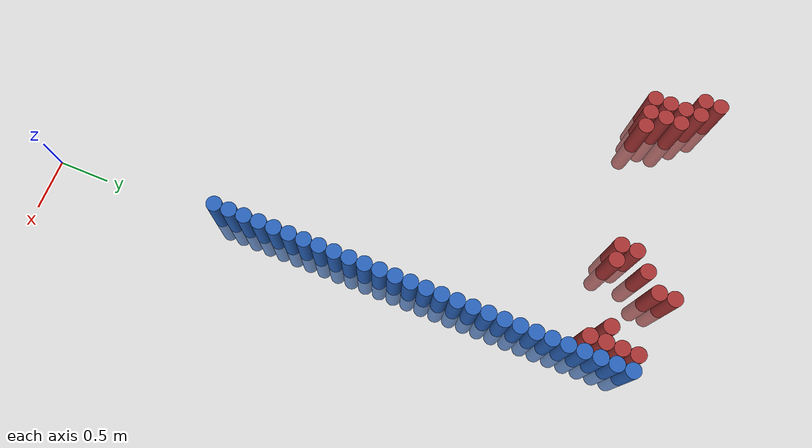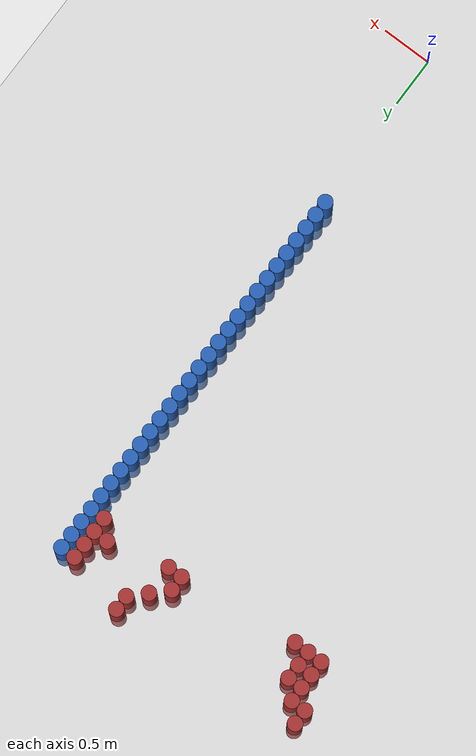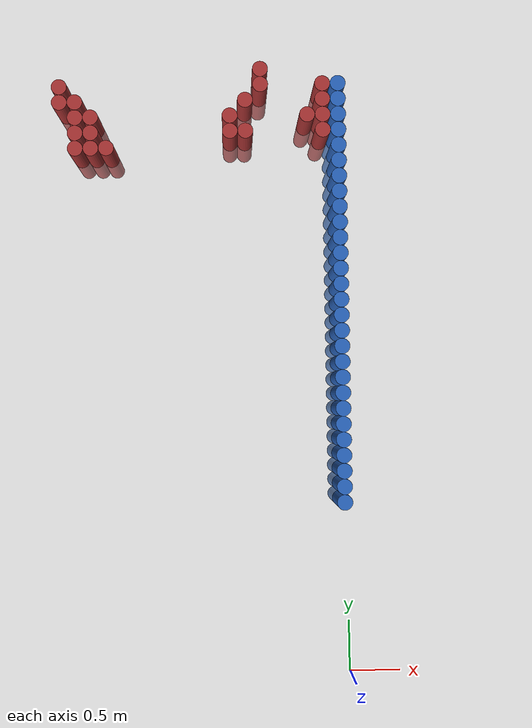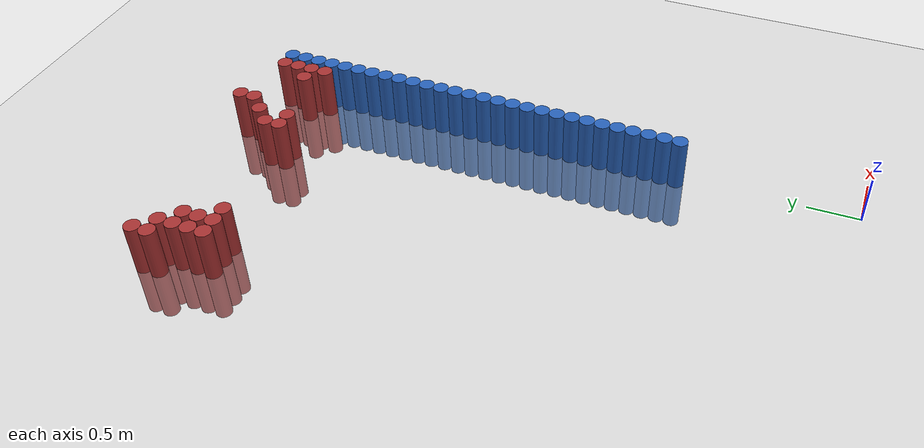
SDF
<sdf version="1.6">
 <world name="default">
  <model name="ground_plane">
   <static>1</static>
   <link name="link">
    <collision name="collision">
     <geometry><plane><normal>0 0 1</normal><size>100 100</size></plane></geometry>
     <surface><friction><ode><mu>100</mu><mu2>50</mu2></ode></friction></surface>
    </collision>
    <visual name="visual">
     <cast_shadows>0</cast_shadows>
     <geometry><plane><normal>0 0 1</normal><size>100 100</size></plane></geometry>
     <material>
      <script><uri>file://media/materials/scripts/gazebo.material</uri><name>Gazebo/Grey</name></script>
     </material>
    </visual>
   </link>
  </model>
  <model name="unit_cylinder_50">
   <static>1</static>
   <pose>-0.075000 1.725000 0.000000 0.000000 0.000000 0.000000</pose>
   <link name="link">
    <inertial>
     <mass>1</mass>
     <inertia><ixx>0.145833</ixx><ixy>0</ixy><ixz>0</ixz><iyy>0.145833</iyy><iyz>0</iyz><izz>0.125</izz></inertia>
    </inertial>
    <collision name="collision">
     <geometry><cylinder><radius>0.075000</radius><length>1</length></cylinder></geometry>
    </collision>
    <visual name="visual">
     <geometry><cylinder><radius>0.075000</radius><length>1</length></cylinder></geometry>
     <material>
      <ambient>0.152000 0.379000 0.720000 1</ambient>
      <diffuse>0.152000 0.379000 0.720000 1</diffuse>
     </material>
     <material>
      <script><name>Gazebo/Grey</name><uri>file://media/materials/scripts/gazebo.material</uri></script>
     </material>
    </visual>
   </link>
  </model>
  <model name="unit_cylinder_52">
   <static>1</static>
   <pose>-0.075000 1.875000 0.000000 0.000000 0.000000 0.000000</pose>
   <link name="link">
    <inertial>
     <mass>1</mass>
     <inertia><ixx>0.145833</ixx><ixy>0</ixy><ixz>0</ixz><iyy>0.145833</iyy><iyz>0</iyz><izz>0.125</izz></inertia>
    </inertial>
    <collision name="collision">
     <geometry><cylinder><radius>0.075000</radius><length>1</length></cylinder></geometry>
    </collision>
    <visual name="visual">
     <geometry><cylinder><radius>0.075000</radius><length>1</length></cylinder></geometry>
     <material>
      <ambient>0.152000 0.379000 0.720000 1</ambient>
      <diffuse>0.152000 0.379000 0.720000 1</diffuse>
     </material>
     <material>
      <script><name>Gazebo/Grey</name><uri>file://media/materials/scripts/gazebo.material</uri></script>
     </material>
    </visual>
   </link>
  </model>
  <model name="unit_cylinder_54">
   <static>1</static>
   <pose>-0.075000 2.025000 0.000000 0.000000 0.000000 0.000000</pose>
   <link name="link">
    <inertial>
     <mass>1</mass>
     <inertia><ixx>0.145833</ixx><ixy>0</ixy><ixz>0</ixz><iyy>0.145833</iyy><iyz>0</iyz><izz>0.125</izz></inertia>
    </inertial>
    <collision name="collision">
     <geometry><cylinder><radius>0.075000</radius><length>1</length></cylinder></geometry>
    </collision>
    <visual name="visual">
     <geometry><cylinder><radius>0.075000</radius><length>1</length></cylinder></geometry>
     <material>
      <ambient>0.152000 0.379000 0.720000 1</ambient>
      <diffuse>0.152000 0.379000 0.720000 1</diffuse>
     </material>
     <material>
      <script><name>Gazebo/Grey</name><uri>file://media/materials/scripts/gazebo.material</uri></script>
     </material>
    </visual>
   </link>
  </model>
  <model name="unit_cylinder_56">
   <static>1</static>
   <pose>-0.075000 2.175000 0.000000 0.000000 0.000000 0.000000</pose>
   <link name="link">
    <inertial>
     <mass>1</mass>
     <inertia><ixx>0.145833</ixx><ixy>0</ixy><ixz>0</ixz><iyy>0.145833</iyy><iyz>0</iyz><izz>0.125</izz></inertia>
    </inertial>
    <collision name="collision">
     <geometry><cylinder><radius>0.075000</radius><length>1</length></cylinder></geometry>
    </collision>
    <visual name="visual">
     <geometry><cylinder><radius>0.075000</radius><length>1</length></cylinder></geometry>
     <material>
      <ambient>0.152000 0.379000 0.720000 1</ambient>
      <diffuse>0.152000 0.379000 0.720000 1</diffuse>
     </material>
     <material>
      <script><name>Gazebo/Grey</name><uri>file://media/materials/scripts/gazebo.material</uri></script>
     </material>
    </visual>
   </link>
  </model>
  <model name="unit_cylinder_58">
   <static>1</static>
   <pose>-0.075000 2.325000 0.000000 0.000000 0.000000 0.000000</pose>
   <link name="link">
    <inertial>
     <mass>1</mass>
     <inertia><ixx>0.145833</ixx><ixy>0</ixy><ixz>0</ixz><iyy>0.145833</iyy><iyz>0</iyz><izz>0.125</izz></inertia>
    </inertial>
    <collision name="collision">
     <geometry><cylinder><radius>0.075000</radius><length>1</length></cylinder></geometry>
    </collision>
    <visual name="visual">
     <geometry><cylinder><radius>0.075000</radius><length>1</length></cylinder></geometry>
     <material>
      <ambient>0.152000 0.379000 0.720000 1</ambient>
      <diffuse>0.152000 0.379000 0.720000 1</diffuse>
     </material>
     <material>
      <script><name>Gazebo/Grey</name><uri>file://media/materials/scripts/gazebo.material</uri></script>
     </material>
    </visual>
   </link>
  </model>
  <model name="unit_cylinder_60">
   <static>1</static>
   <pose>-0.075000 2.475000 0.000000 0.000000 0.000000 0.000000</pose>
   <link name="link">
    <inertial>
     <mass>1</mass>
     <inertia><ixx>0.145833</ixx><ixy>0</ixy><ixz>0</ixz><iyy>0.145833</iyy><iyz>0</iyz><izz>0.125</izz></inertia>
    </inertial>
    <collision name="collision">
     <geometry><cylinder><radius>0.075000</radius><length>1</length></cylinder></geometry>
    </collision>
    <visual name="visual">
     <geometry><cylinder><radius>0.075000</radius><length>1</length></cylinder></geometry>
     <material>
      <ambient>0.152000 0.379000 0.720000 1</ambient>
      <diffuse>0.152000 0.379000 0.720000 1</diffuse>
     </material>
     <material>
      <script><name>Gazebo/Grey</name><uri>file://media/materials/scripts/gazebo.material</uri></script>
     </material>
    </visual>
   </link>
  </model>
  <model name="unit_cylinder_62">
   <static>1</static>
   <pose>-0.075000 2.625000 0.000000 0.000000 0.000000 0.000000</pose>
   <link name="link">
    <inertial>
     <mass>1</mass>
     <inertia><ixx>0.145833</ixx><ixy>0</ixy><ixz>0</ixz><iyy>0.145833</iyy><iyz>0</iyz><izz>0.125</izz></inertia>
    </inertial>
    <collision name="collision">
     <geometry><cylinder><radius>0.075000</radius><length>1</length></cylinder></geometry>
    </collision>
    <visual name="visual">
     <geometry><cylinder><radius>0.075000</radius><length>1</length></cylinder></geometry>
     <material>
      <ambient>0.152000 0.379000 0.720000 1</ambient>
      <diffuse>0.152000 0.379000 0.720000 1</diffuse>
     </material>
     <material>
      <script><name>Gazebo/Grey</name><uri>file://media/materials/scripts/gazebo.material</uri></script>
     </material>
    </visual>
   </link>
  </model>
  <model name="unit_cylinder_64">
   <static>1</static>
   <pose>-0.075000 2.775000 0.000000 0.000000 0.000000 0.000000</pose>
   <link name="link">
    <inertial>
     <mass>1</mass>
     <inertia><ixx>0.145833</ixx><ixy>0</ixy><ixz>0</ixz><iyy>0.145833</iyy><iyz>0</iyz><izz>0.125</izz></inertia>
    </inertial>
    <collision name="collision">
     <geometry><cylinder><radius>0.075000</radius><length>1</length></cylinder></geometry>
    </collision>
    <visual name="visual">
     <geometry><cylinder><radius>0.075000</radius><length>1</length></cylinder></geometry>
     <material>
      <ambient>0.152000 0.379000 0.720000 1</ambient>
      <diffuse>0.152000 0.379000 0.720000 1</diffuse>
     </material>
     <material>
      <script><name>Gazebo/Grey</name><uri>file://media/materials/scripts/gazebo.material</uri></script>
     </material>
    </visual>
   </link>
  </model>
  <model name="unit_cylinder_66">
   <static>1</static>
   <pose>-0.075000 2.925000 0.000000 0.000000 0.000000 0.000000</pose>
   <link name="link">
    <inertial>
     <mass>1</mass>
     <inertia><ixx>0.145833</ixx><ixy>0</ixy><ixz>0</ixz><iyy>0.145833</iyy><iyz>0</iyz><izz>0.125</izz></inertia>
    </inertial>
    <collision name="collision">
     <geometry><cylinder><radius>0.075000</radius><length>1</length></cylinder></geometry>
    </collision>
    <visual name="visual">
     <geometry><cylinder><radius>0.075000</radius><length>1</length></cylinder></geometry>
     <material>
      <ambient>0.152000 0.379000 0.720000 1</ambient>
      <diffuse>0.152000 0.379000 0.720000 1</diffuse>
     </material>
     <material>
      <script><name>Gazebo/Grey</name><uri>file://media/materials/scripts/gazebo.material</uri></script>
     </material>
    </visual>
   </link>
  </model>
  <model name="unit_cylinder_68">
   <static>1</static>
   <pose>-0.075000 3.075000 0.000000 0.000000 0.000000 0.000000</pose>
   <link name="link">
    <inertial>
     <mass>1</mass>
     <inertia><ixx>0.145833</ixx><ixy>0</ixy><ixz>0</ixz><iyy>0.145833</iyy><iyz>0</iyz><izz>0.125</izz></inertia>
    </inertial>
    <collision name="collision">
     <geometry><cylinder><radius>0.075000</radius><length>1</length></cylinder></geometry>
    </collision>
    <visual name="visual">
     <geometry><cylinder><radius>0.075000</radius><length>1</length></cylinder></geometry>
     <material>
      <ambient>0.152000 0.379000 0.720000 1</ambient>
      <diffuse>0.152000 0.379000 0.720000 1</diffuse>
     </material>
     <material>
      <script><name>Gazebo/Grey</name><uri>file://media/materials/scripts/gazebo.material</uri></script>
     </material>
    </visual>
   </link>
  </model>
  <model name="unit_cylinder_70">
   <static>1</static>
   <pose>-0.075000 3.225000 0.000000 0.000000 0.000000 0.000000</pose>
   <link name="link">
    <inertial>
     <mass>1</mass>
     <inertia><ixx>0.145833</ixx><ixy>0</ixy><ixz>0</ixz><iyy>0.145833</iyy><iyz>0</iyz><izz>0.125</izz></inertia>
    </inertial>
    <collision name="collision">
     <geometry><cylinder><radius>0.075000</radius><length>1</length></cylinder></geometry>
    </collision>
    <visual name="visual">
     <geometry><cylinder><radius>0.075000</radius><length>1</length></cylinder></geometry>
     <material>
      <ambient>0.152000 0.379000 0.720000 1</ambient>
      <diffuse>0.152000 0.379000 0.720000 1</diffuse>
     </material>
     <material>
      <script><name>Gazebo/Grey</name><uri>file://media/materials/scripts/gazebo.material</uri></script>
     </material>
    </visual>
   </link>
  </model>
  <model name="unit_cylinder_72">
   <static>1</static>
   <pose>-0.075000 3.375000 0.000000 0.000000 0.000000 0.000000</pose>
   <link name="link">
    <inertial>
     <mass>1</mass>
     <inertia><ixx>0.145833</ixx><ixy>0</ixy><ixz>0</ixz><iyy>0.145833</iyy><iyz>0</iyz><izz>0.125</izz></inertia>
    </inertial>
    <collision name="collision">
     <geometry><cylinder><radius>0.075000</radius><length>1</length></cylinder></geometry>
    </collision>
    <visual name="visual">
     <geometry><cylinder><radius>0.075000</radius><length>1</length></cylinder></geometry>
     <material>
      <ambient>0.152000 0.379000 0.720000 1</ambient>
      <diffuse>0.152000 0.379000 0.720000 1</diffuse>
     </material>
     <material>
      <script><name>Gazebo/Grey</name><uri>file://media/materials/scripts/gazebo.material</uri></script>
     </material>
    </visual>
   </link>
  </model>
  <model name="unit_cylinder_74">
   <static>1</static>
   <pose>-0.075000 3.525000 0.000000 0.000000 0.000000 0.000000</pose>
   <link name="link">
    <inertial>
     <mass>1</mass>
     <inertia><ixx>0.145833</ixx><ixy>0</ixy><ixz>0</ixz><iyy>0.145833</iyy><iyz>0</iyz><izz>0.125</izz></inertia>
    </inertial>
    <collision name="collision">
     <geometry><cylinder><radius>0.075000</radius><length>1</length></cylinder></geometry>
    </collision>
    <visual name="visual">
     <geometry><cylinder><radius>0.075000</radius><length>1</length></cylinder></geometry>
     <material>
      <ambient>0.152000 0.379000 0.720000 1</ambient>
      <diffuse>0.152000 0.379000 0.720000 1</diffuse>
     </material>
     <material>
      <script><name>Gazebo/Grey</name><uri>file://media/materials/scripts/gazebo.material</uri></script>
     </material>
    </visual>
   </link>
  </model>
  <model name="unit_cylinder_76">
   <static>1</static>
   <pose>-0.075000 3.675000 0.000000 0.000000 0.000000 0.000000</pose>
   <link name="link">
    <inertial>
     <mass>1</mass>
     <inertia><ixx>0.145833</ixx><ixy>0</ixy><ixz>0</ixz><iyy>0.145833</iyy><iyz>0</iyz><izz>0.125</izz></inertia>
    </inertial>
    <collision name="collision">
     <geometry><cylinder><radius>0.075000</radius><length>1</length></cylinder></geometry>
    </collision>
    <visual name="visual">
     <geometry><cylinder><radius>0.075000</radius><length>1</length></cylinder></geometry>
     <material>
      <ambient>0.152000 0.379000 0.720000 1</ambient>
      <diffuse>0.152000 0.379000 0.720000 1</diffuse>
     </material>
     <material>
      <script><name>Gazebo/Grey</name><uri>file://media/materials/scripts/gazebo.material</uri></script>
     </material>
    </visual>
   </link>
  </model>
  <model name="unit_cylinder_78">
   <static>1</static>
   <pose>-0.075000 3.825000 0.000000 0.000000 0.000000 0.000000</pose>
   <link name="link">
    <inertial>
     <mass>1</mass>
     <inertia><ixx>0.145833</ixx><ixy>0</ixy><ixz>0</ixz><iyy>0.145833</iyy><iyz>0</iyz><izz>0.125</izz></inertia>
    </inertial>
    <collision name="collision">
     <geometry><cylinder><radius>0.075000</radius><length>1</length></cylinder></geometry>
    </collision>
    <visual name="visual">
     <geometry><cylinder><radius>0.075000</radius><length>1</length></cylinder></geometry>
     <material>
      <ambient>0.152000 0.379000 0.720000 1</ambient>
      <diffuse>0.152000 0.379000 0.720000 1</diffuse>
     </material>
     <material>
      <script><name>Gazebo/Grey</name><uri>file://media/materials/scripts/gazebo.material</uri></script>
     </material>
    </visual>
   </link>
  </model>
  <model name="unit_cylinder_80">
   <static>1</static>
   <pose>-0.075000 3.975000 0.000000 0.000000 0.000000 0.000000</pose>
   <link name="link">
    <inertial>
     <mass>1</mass>
     <inertia><ixx>0.145833</ixx><ixy>0</ixy><ixz>0</ixz><iyy>0.145833</iyy><iyz>0</iyz><izz>0.125</izz></inertia>
    </inertial>
    <collision name="collision">
     <geometry><cylinder><radius>0.075000</radius><length>1</length></cylinder></geometry>
    </collision>
    <visual name="visual">
     <geometry><cylinder><radius>0.075000</radius><length>1</length></cylinder></geometry>
     <material>
      <ambient>0.152000 0.379000 0.720000 1</ambient>
      <diffuse>0.152000 0.379000 0.720000 1</diffuse>
     </material>
     <material>
      <script><name>Gazebo/Grey</name><uri>file://media/materials/scripts/gazebo.material</uri></script>
     </material>
    </visual>
   </link>
  </model>
  <model name="unit_cylinder_82">
   <static>1</static>
   <pose>-0.075000 4.125000 0.000000 0.000000 0.000000 0.000000</pose>
   <link name="link">
    <inertial>
     <mass>1</mass>
     <inertia><ixx>0.145833</ixx><ixy>0</ixy><ixz>0</ixz><iyy>0.145833</iyy><iyz>0</iyz><izz>0.125</izz></inertia>
    </inertial>
    <collision name="collision">
     <geometry><cylinder><radius>0.075000</radius><length>1</length></cylinder></geometry>
    </collision>
    <visual name="visual">
     <geometry><cylinder><radius>0.075000</radius><length>1</length></cylinder></geometry>
     <material>
      <ambient>0.152000 0.379000 0.720000 1</ambient>
      <diffuse>0.152000 0.379000 0.720000 1</diffuse>
     </material>
     <material>
      <script><name>Gazebo/Grey</name><uri>file://media/materials/scripts/gazebo.material</uri></script>
     </material>
    </visual>
   </link>
  </model>
  <model name="unit_cylinder_84">
   <static>1</static>
   <pose>-0.075000 4.275000 0.000000 0.000000 0.000000 0.000000</pose>
   <link name="link">
    <inertial>
     <mass>1</mass>
     <inertia><ixx>0.145833</ixx><ixy>0</ixy><ixz>0</ixz><iyy>0.145833</iyy><iyz>0</iyz><izz>0.125</izz></inertia>
    </inertial>
    <collision name="collision">
     <geometry><cylinder><radius>0.075000</radius><length>1</length></cylinder></geometry>
    </collision>
    <visual name="visual">
     <geometry><cylinder><radius>0.075000</radius><length>1</length></cylinder></geometry>
     <material>
      <ambient>0.152000 0.379000 0.720000 1</ambient>
      <diffuse>0.152000 0.379000 0.720000 1</diffuse>
     </material>
     <material>
      <script><name>Gazebo/Grey</name><uri>file://media/materials/scripts/gazebo.material</uri></script>
     </material>
    </visual>
   </link>
  </model>
  <model name="unit_cylinder_86">
   <static>1</static>
   <pose>-0.075000 4.425000 0.000000 0.000000 0.000000 0.000000</pose>
   <link name="link">
    <inertial>
     <mass>1</mass>
     <inertia><ixx>0.145833</ixx><ixy>0</ixy><ixz>0</ixz><iyy>0.145833</iyy><iyz>0</iyz><izz>0.125</izz></inertia>
    </inertial>
    <collision name="collision">
     <geometry><cylinder><radius>0.075000</radius><length>1</length></cylinder></geometry>
    </collision>
    <visual name="visual">
     <geometry><cylinder><radius>0.075000</radius><length>1</length></cylinder></geometry>
     <material>
      <ambient>0.152000 0.379000 0.720000 1</ambient>
      <diffuse>0.152000 0.379000 0.720000 1</diffuse>
     </material>
     <material>
      <script><name>Gazebo/Grey</name><uri>file://media/materials/scripts/gazebo.material</uri></script>
     </material>
    </visual>
   </link>
  </model>
  <model name="unit_cylinder_88">
   <static>1</static>
   <pose>-0.075000 4.575000 0.000000 0.000000 0.000000 0.000000</pose>
   <link name="link">
    <inertial>
     <mass>1</mass>
     <inertia><ixx>0.145833</ixx><ixy>0</ixy><ixz>0</ixz><iyy>0.145833</iyy><iyz>0</iyz><izz>0.125</izz></inertia>
    </inertial>
    <collision name="collision">
     <geometry><cylinder><radius>0.075000</radius><length>1</length></cylinder></geometry>
    </collision>
    <visual name="visual">
     <geometry><cylinder><radius>0.075000</radius><length>1</length></cylinder></geometry>
     <material>
      <ambient>0.152000 0.379000 0.720000 1</ambient>
      <diffuse>0.152000 0.379000 0.720000 1</diffuse>
     </material>
     <material>
      <script><name>Gazebo/Grey</name><uri>file://media/materials/scripts/gazebo.material</uri></script>
     </material>
    </visual>
   </link>
  </model>
  <model name="unit_cylinder_90">
   <static>1</static>
   <pose>-0.075000 4.725000 0.000000 0.000000 0.000000 0.000000</pose>
   <link name="link">
    <inertial>
     <mass>1</mass>
     <inertia><ixx>0.145833</ixx><ixy>0</ixy><ixz>0</ixz><iyy>0.145833</iyy><iyz>0</iyz><izz>0.125</izz></inertia>
    </inertial>
    <collision name="collision">
     <geometry><cylinder><radius>0.075000</radius><length>1</length></cylinder></geometry>
    </collision>
    <visual name="visual">
     <geometry><cylinder><radius>0.075000</radius><length>1</length></cylinder></geometry>
     <material>
      <ambient>0.152000 0.379000 0.720000 1</ambient>
      <diffuse>0.152000 0.379000 0.720000 1</diffuse>
     </material>
     <material>
      <script><name>Gazebo/Grey</name><uri>file://media/materials/scripts/gazebo.material</uri></script>
     </material>
    </visual>
   </link>
  </model>
  <model name="unit_cylinder_92">
   <static>1</static>
   <pose>-0.075000 4.875000 0.000000 0.000000 0.000000 0.000000</pose>
   <link name="link">
    <inertial>
     <mass>1</mass>
     <inertia><ixx>0.145833</ixx><ixy>0</ixy><ixz>0</ixz><iyy>0.145833</iyy><iyz>0</iyz><izz>0.125</izz></inertia>
    </inertial>
    <collision name="collision">
     <geometry><cylinder><radius>0.075000</radius><length>1</length></cylinder></geometry>
    </collision>
    <visual name="visual">
     <geometry><cylinder><radius>0.075000</radius><length>1</length></cylinder></geometry>
     <material>
      <ambient>0.152000 0.379000 0.720000 1</ambient>
      <diffuse>0.152000 0.379000 0.720000 1</diffuse>
     </material>
     <material>
      <script><name>Gazebo/Grey</name><uri>file://media/materials/scripts/gazebo.material</uri></script>
     </material>
    </visual>
   </link>
  </model>
  <model name="unit_cylinder_94">
   <static>1</static>
   <pose>-0.075000 5.025000 0.000000 0.000000 0.000000 0.000000</pose>
   <link name="link">
    <inertial>
     <mass>1</mass>
     <inertia><ixx>0.145833</ixx><ixy>0</ixy><ixz>0</ixz><iyy>0.145833</iyy><iyz>0</iyz><izz>0.125</izz></inertia>
    </inertial>
    <collision name="collision">
     <geometry><cylinder><radius>0.075000</radius><length>1</length></cylinder></geometry>
    </collision>
    <visual name="visual">
     <geometry><cylinder><radius>0.075000</radius><length>1</length></cylinder></geometry>
     <material>
      <ambient>0.152000 0.379000 0.720000 1</ambient>
      <diffuse>0.152000 0.379000 0.720000 1</diffuse>
     </material>
     <material>
      <script><name>Gazebo/Grey</name><uri>file://media/materials/scripts/gazebo.material</uri></script>
     </material>
    </visual>
   </link>
  </model>
  <model name="unit_cylinder_216">
   <static>1</static>
   <pose>-2.775000 5.625000 0.000000 0.000000 0.000000 0.000000</pose>
   <link name="link">
    <inertial>
     <mass>1</mass>
     <inertia><ixx>0.145833</ixx><ixy>0</ixy><ixz>0</ixz><iyy>0.145833</iyy><iyz>0</iyz><izz>0.125</izz></inertia>
    </inertial>
    <collision name="collision">
     <geometry><cylinder><radius>0.075000</radius><length>1</length></cylinder></geometry>
    </collision>
    <visual name="visual">
     <geometry><cylinder><radius>0.075000</radius><length>1</length></cylinder></geometry>
     <material>
      <ambient>0.648000 0.192000 0.192000 1</ambient>
      <diffuse>0.648000 0.192000 0.192000 1</diffuse>
     </material>
     <material>
      <script><name>Gazebo/Grey</name><uri>file://media/materials/scripts/gazebo.material</uri></script>
     </material>
    </visual>
   </link>
  </model>
  <model name="unit_cylinder_217">
   <static>1</static>
   <pose>-2.775000 5.775000 0.000000 0.000000 0.000000 0.000000</pose>
   <link name="link">
    <inertial>
     <mass>1</mass>
     <inertia><ixx>0.145833</ixx><ixy>0</ixy><ixz>0</ixz><iyy>0.145833</iyy><iyz>0</iyz><izz>0.125</izz></inertia>
    </inertial>
    <collision name="collision">
     <geometry><cylinder><radius>0.075000</radius><length>1</length></cylinder></geometry>
    </collision>
    <visual name="visual">
     <geometry><cylinder><radius>0.075000</radius><length>1</length></cylinder></geometry>
     <material>
      <ambient>0.648000 0.192000 0.192000 1</ambient>
      <diffuse>0.648000 0.192000 0.192000 1</diffuse>
     </material>
     <material>
      <script><name>Gazebo/Grey</name><uri>file://media/materials/scripts/gazebo.material</uri></script>
     </material>
    </visual>
   </link>
  </model>
  <model name="unit_cylinder_220">
   <static>1</static>
   <pose>-2.625000 5.175000 0.000000 0.000000 0.000000 0.000000</pose>
   <link name="link">
    <inertial>
     <mass>1</mass>
     <inertia><ixx>0.145833</ixx><ixy>0</ixy><ixz>0</ixz><iyy>0.145833</iyy><iyz>0</iyz><izz>0.125</izz></inertia>
    </inertial>
    <collision name="collision">
     <geometry><cylinder><radius>0.075000</radius><length>1</length></cylinder></geometry>
    </collision>
    <visual name="visual">
     <geometry><cylinder><radius>0.075000</radius><length>1</length></cylinder></geometry>
     <material>
      <ambient>0.648000 0.192000 0.192000 1</ambient>
      <diffuse>0.648000 0.192000 0.192000 1</diffuse>
     </material>
     <material>
      <script><name>Gazebo/Grey</name><uri>file://media/materials/scripts/gazebo.material</uri></script>
     </material>
    </visual>
   </link>
  </model>
  <model name="unit_cylinder_221">
   <static>1</static>
   <pose>-2.625000 5.325000 0.000000 0.000000 0.000000 0.000000</pose>
   <link name="link">
    <inertial>
     <mass>1</mass>
     <inertia><ixx>0.145833</ixx><ixy>0</ixy><ixz>0</ixz><iyy>0.145833</iyy><iyz>0</iyz><izz>0.125</izz></inertia>
    </inertial>
    <collision name="collision">
     <geometry><cylinder><radius>0.075000</radius><length>1</length></cylinder></geometry>
    </collision>
    <visual name="visual">
     <geometry><cylinder><radius>0.075000</radius><length>1</length></cylinder></geometry>
     <material>
      <ambient>0.648000 0.192000 0.192000 1</ambient>
      <diffuse>0.648000 0.192000 0.192000 1</diffuse>
     </material>
     <material>
      <script><name>Gazebo/Grey</name><uri>file://media/materials/scripts/gazebo.material</uri></script>
     </material>
    </visual>
   </link>
  </model>
  <model name="unit_cylinder_222">
   <static>1</static>
   <pose>-2.625000 5.475000 0.000000 0.000000 0.000000 0.000000</pose>
   <link name="link">
    <inertial>
     <mass>1</mass>
     <inertia><ixx>0.145833</ixx><ixy>0</ixy><ixz>0</ixz><iyy>0.145833</iyy><iyz>0</iyz><izz>0.125</izz></inertia>
    </inertial>
    <collision name="collision">
     <geometry><cylinder><radius>0.075000</radius><length>1</length></cylinder></geometry>
    </collision>
    <visual name="visual">
     <geometry><cylinder><radius>0.075000</radius><length>1</length></cylinder></geometry>
     <material>
      <ambient>0.648000 0.192000 0.192000 1</ambient>
      <diffuse>0.648000 0.192000 0.192000 1</diffuse>
     </material>
     <material>
      <script><name>Gazebo/Grey</name><uri>file://media/materials/scripts/gazebo.material</uri></script>
     </material>
    </visual>
   </link>
  </model>
  <model name="unit_cylinder_223">
   <static>1</static>
   <pose>-2.625000 5.625000 0.000000 0.000000 0.000000 0.000000</pose>
   <link name="link">
    <inertial>
     <mass>1</mass>
     <inertia><ixx>0.145833</ixx><ixy>0</ixy><ixz>0</ixz><iyy>0.145833</iyy><iyz>0</iyz><izz>0.125</izz></inertia>
    </inertial>
    <collision name="collision">
     <geometry><cylinder><radius>0.075000</radius><length>1</length></cylinder></geometry>
    </collision>
    <visual name="visual">
     <geometry><cylinder><radius>0.075000</radius><length>1</length></cylinder></geometry>
     <material>
      <ambient>0.648000 0.192000 0.192000 1</ambient>
      <diffuse>0.648000 0.192000 0.192000 1</diffuse>
     </material>
     <material>
      <script><name>Gazebo/Grey</name><uri>file://media/materials/scripts/gazebo.material</uri></script>
     </material>
    </visual>
   </link>
  </model>
  <model name="unit_cylinder_225">
   <static>1</static>
   <pose>-2.475000 5.175000 0.000000 0.000000 0.000000 0.000000</pose>
   <link name="link">
    <inertial>
     <mass>1</mass>
     <inertia><ixx>0.145833</ixx><ixy>0</ixy><ixz>0</ixz><iyy>0.145833</iyy><iyz>0</iyz><izz>0.125</izz></inertia>
    </inertial>
    <collision name="collision">
     <geometry><cylinder><radius>0.075000</radius><length>1</length></cylinder></geometry>
    </collision>
    <visual name="visual">
     <geometry><cylinder><radius>0.075000</radius><length>1</length></cylinder></geometry>
     <material>
      <ambient>0.648000 0.192000 0.192000 1</ambient>
      <diffuse>0.648000 0.192000 0.192000 1</diffuse>
     </material>
     <material>
      <script><name>Gazebo/Grey</name><uri>file://media/materials/scripts/gazebo.material</uri></script>
     </material>
    </visual>
   </link>
  </model>
  <model name="unit_cylinder_226">
   <static>1</static>
   <pose>-2.475000 5.325000 0.000000 0.000000 0.000000 0.000000</pose>
   <link name="link">
    <inertial>
     <mass>1</mass>
     <inertia><ixx>0.145833</ixx><ixy>0</ixy><ixz>0</ixz><iyy>0.145833</iyy><iyz>0</iyz><izz>0.125</izz></inertia>
    </inertial>
    <collision name="collision">
     <geometry><cylinder><radius>0.075000</radius><length>1</length></cylinder></geometry>
    </collision>
    <visual name="visual">
     <geometry><cylinder><radius>0.075000</radius><length>1</length></cylinder></geometry>
     <material>
      <ambient>0.648000 0.192000 0.192000 1</ambient>
      <diffuse>0.648000 0.192000 0.192000 1</diffuse>
     </material>
     <material>
      <script><name>Gazebo/Grey</name><uri>file://media/materials/scripts/gazebo.material</uri></script>
     </material>
    </visual>
   </link>
  </model>
  <model name="unit_cylinder_227">
   <static>1</static>
   <pose>-2.475000 5.475000 0.000000 0.000000 0.000000 0.000000</pose>
   <link name="link">
    <inertial>
     <mass>1</mass>
     <inertia><ixx>0.145833</ixx><ixy>0</ixy><ixz>0</ixz><iyy>0.145833</iyy><iyz>0</iyz><izz>0.125</izz></inertia>
    </inertial>
    <collision name="collision">
     <geometry><cylinder><radius>0.075000</radius><length>1</length></cylinder></geometry>
    </collision>
    <visual name="visual">
     <geometry><cylinder><radius>0.075000</radius><length>1</length></cylinder></geometry>
     <material>
      <ambient>0.648000 0.192000 0.192000 1</ambient>
      <diffuse>0.648000 0.192000 0.192000 1</diffuse>
     </material>
     <material>
      <script><name>Gazebo/Grey</name><uri>file://media/materials/scripts/gazebo.material</uri></script>
     </material>
    </visual>
   </link>
  </model>
  <model name="unit_cylinder_228">
   <static>1</static>
   <pose>-2.325000 5.175000 0.000000 0.000000 0.000000 0.000000</pose>
   <link name="link">
    <inertial>
     <mass>1</mass>
     <inertia><ixx>0.145833</ixx><ixy>0</ixy><ixz>0</ixz><iyy>0.145833</iyy><iyz>0</iyz><izz>0.125</izz></inertia>
    </inertial>
    <collision name="collision">
     <geometry><cylinder><radius>0.075000</radius><length>1</length></cylinder></geometry>
    </collision>
    <visual name="visual">
     <geometry><cylinder><radius>0.075000</radius><length>1</length></cylinder></geometry>
     <material>
      <ambient>0.648000 0.192000 0.192000 1</ambient>
      <diffuse>0.648000 0.192000 0.192000 1</diffuse>
     </material>
     <material>
      <script><name>Gazebo/Grey</name><uri>file://media/materials/scripts/gazebo.material</uri></script>
     </material>
    </visual>
   </link>
  </model>
  <model name="unit_cylinder_269">
   <static>1</static>
   <pose>-1.125000 5.325000 0.000000 0.000000 0.000000 0.000000</pose>
   <link name="link">
    <inertial>
     <mass>1</mass>
     <inertia><ixx>0.145833</ixx><ixy>0</ixy><ixz>0</ixz><iyy>0.145833</iyy><iyz>0</iyz><izz>0.125</izz></inertia>
    </inertial>
    <collision name="collision">
     <geometry><cylinder><radius>0.075000</radius><length>1</length></cylinder></geometry>
    </collision>
    <visual name="visual">
     <geometry><cylinder><radius>0.075000</radius><length>1</length></cylinder></geometry>
     <material>
      <ambient>0.648000 0.192000 0.192000 1</ambient>
      <diffuse>0.648000 0.192000 0.192000 1</diffuse>
     </material>
     <material>
      <script><name>Gazebo/Grey</name><uri>file://media/materials/scripts/gazebo.material</uri></script>
     </material>
    </visual>
   </link>
  </model>
  <model name="unit_cylinder_270">
   <static>1</static>
   <pose>-1.125000 5.475000 0.000000 0.000000 0.000000 0.000000</pose>
   <link name="link">
    <inertial>
     <mass>1</mass>
     <inertia><ixx>0.145833</ixx><ixy>0</ixy><ixz>0</ixz><iyy>0.145833</iyy><iyz>0</iyz><izz>0.125</izz></inertia>
    </inertial>
    <collision name="collision">
     <geometry><cylinder><radius>0.075000</radius><length>1</length></cylinder></geometry>
    </collision>
    <visual name="visual">
     <geometry><cylinder><radius>0.075000</radius><length>1</length></cylinder></geometry>
     <material>
      <ambient>0.648000 0.192000 0.192000 1</ambient>
      <diffuse>0.648000 0.192000 0.192000 1</diffuse>
     </material>
     <material>
      <script><name>Gazebo/Grey</name><uri>file://media/materials/scripts/gazebo.material</uri></script>
     </material>
    </visual>
   </link>
  </model>
  <model name="unit_cylinder_274">
   <static>1</static>
   <pose>-0.975000 5.325000 0.000000 0.000000 0.000000 0.000000</pose>
   <link name="link">
    <inertial>
     <mass>1</mass>
     <inertia><ixx>0.145833</ixx><ixy>0</ixy><ixz>0</ixz><iyy>0.145833</iyy><iyz>0</iyz><izz>0.125</izz></inertia>
    </inertial>
    <collision name="collision">
     <geometry><cylinder><radius>0.075000</radius><length>1</length></cylinder></geometry>
    </collision>
    <visual name="visual">
     <geometry><cylinder><radius>0.075000</radius><length>1</length></cylinder></geometry>
     <material>
      <ambient>0.648000 0.192000 0.192000 1</ambient>
      <diffuse>0.648000 0.192000 0.192000 1</diffuse>
     </material>
     <material>
      <script><name>Gazebo/Grey</name><uri>file://media/materials/scripts/gazebo.material</uri></script>
     </material>
    </visual>
   </link>
  </model>
  <model name="unit_cylinder_275">
   <static>1</static>
   <pose>-0.975000 5.625000 0.000000 0.000000 0.000000 0.000000</pose>
   <link name="link">
    <inertial>
     <mass>1</mass>
     <inertia><ixx>0.145833</ixx><ixy>0</ixy><ixz>0</ixz><iyy>0.145833</iyy><iyz>0</iyz><izz>0.125</izz></inertia>
    </inertial>
    <collision name="collision">
     <geometry><cylinder><radius>0.075000</radius><length>1</length></cylinder></geometry>
    </collision>
    <visual name="visual">
     <geometry><cylinder><radius>0.075000</radius><length>1</length></cylinder></geometry>
     <material>
      <ambient>0.648000 0.192000 0.192000 1</ambient>
      <diffuse>0.648000 0.192000 0.192000 1</diffuse>
     </material>
     <material>
      <script><name>Gazebo/Grey</name><uri>file://media/materials/scripts/gazebo.material</uri></script>
     </material>
    </visual>
   </link>
  </model>
  <model name="unit_cylinder_278">
   <static>1</static>
   <pose>-0.825000 5.775000 0.000000 0.000000 0.000000 0.000000</pose>
   <link name="link">
    <inertial>
     <mass>1</mass>
     <inertia><ixx>0.145833</ixx><ixy>0</ixy><ixz>0</ixz><iyy>0.145833</iyy><iyz>0</iyz><izz>0.125</izz></inertia>
    </inertial>
    <collision name="collision">
     <geometry><cylinder><radius>0.075000</radius><length>1</length></cylinder></geometry>
    </collision>
    <visual name="visual">
     <geometry><cylinder><radius>0.075000</radius><length>1</length></cylinder></geometry>
     <material>
      <ambient>0.648000 0.192000 0.192000 1</ambient>
      <diffuse>0.648000 0.192000 0.192000 1</diffuse>
     </material>
     <material>
      <script><name>Gazebo/Grey</name><uri>file://media/materials/scripts/gazebo.material</uri></script>
     </material>
    </visual>
   </link>
  </model>
  <model name="unit_cylinder_279">
   <static>1</static>
   <pose>-0.825000 5.925000 0.000000 0.000000 0.000000 0.000000</pose>
   <link name="link">
    <inertial>
     <mass>1</mass>
     <inertia><ixx>0.145833</ixx><ixy>0</ixy><ixz>0</ixz><iyy>0.145833</iyy><iyz>0</iyz><izz>0.125</izz></inertia>
    </inertial>
    <collision name="collision">
     <geometry><cylinder><radius>0.075000</radius><length>1</length></cylinder></geometry>
    </collision>
    <visual name="visual">
     <geometry><cylinder><radius>0.075000</radius><length>1</length></cylinder></geometry>
     <material>
      <ambient>0.648000 0.192000 0.192000 1</ambient>
      <diffuse>0.648000 0.192000 0.192000 1</diffuse>
     </material>
     <material>
      <script><name>Gazebo/Grey</name><uri>file://media/materials/scripts/gazebo.material</uri></script>
     </material>
    </visual>
   </link>
  </model>
  <model name="unit_cylinder_291">
   <static>1</static>
   <pose>-0.375000 5.475000 0.000000 0.000000 0.000000 0.000000</pose>
   <link name="link">
    <inertial>
     <mass>1</mass>
     <inertia><ixx>0.145833</ixx><ixy>0</ixy><ixz>0</ixz><iyy>0.145833</iyy><iyz>0</iyz><izz>0.125</izz></inertia>
    </inertial>
    <collision name="collision">
     <geometry><cylinder><radius>0.075000</radius><length>1</length></cylinder></geometry>
    </collision>
    <visual name="visual">
     <geometry><cylinder><radius>0.075000</radius><length>1</length></cylinder></geometry>
     <material>
      <ambient>0.648000 0.192000 0.192000 1</ambient>
      <diffuse>0.648000 0.192000 0.192000 1</diffuse>
     </material>
     <material>
      <script><name>Gazebo/Grey</name><uri>file://media/materials/scripts/gazebo.material</uri></script>
     </material>
    </visual>
   </link>
  </model>
  <model name="unit_cylinder_296">
   <static>1</static>
   <pose>-0.225000 5.325000 0.000000 0.000000 0.000000 0.000000</pose>
   <link name="link">
    <inertial>
     <mass>1</mass>
     <inertia><ixx>0.145833</ixx><ixy>0</ixy><ixz>0</ixz><iyy>0.145833</iyy><iyz>0</iyz><izz>0.125</izz></inertia>
    </inertial>
    <collision name="collision">
     <geometry><cylinder><radius>0.075000</radius><length>1</length></cylinder></geometry>
    </collision>
    <visual name="visual">
     <geometry><cylinder><radius>0.075000</radius><length>1</length></cylinder></geometry>
     <material>
      <ambient>0.648000 0.192000 0.192000 1</ambient>
      <diffuse>0.648000 0.192000 0.192000 1</diffuse>
     </material>
     <material>
      <script><name>Gazebo/Grey</name><uri>file://media/materials/scripts/gazebo.material</uri></script>
     </material>
    </visual>
   </link>
  </model>
  <model name="unit_cylinder_297">
   <static>1</static>
   <pose>-0.225000 5.475000 0.000000 0.000000 0.000000 0.000000</pose>
   <link name="link">
    <inertial>
     <mass>1</mass>
     <inertia><ixx>0.145833</ixx><ixy>0</ixy><ixz>0</ixz><iyy>0.145833</iyy><iyz>0</iyz><izz>0.125</izz></inertia>
    </inertial>
    <collision name="collision">
     <geometry><cylinder><radius>0.075000</radius><length>1</length></cylinder></geometry>
    </collision>
    <visual name="visual">
     <geometry><cylinder><radius>0.075000</radius><length>1</length></cylinder></geometry>
     <material>
      <ambient>0.648000 0.192000 0.192000 1</ambient>
      <diffuse>0.648000 0.192000 0.192000 1</diffuse>
     </material>
     <material>
      <script><name>Gazebo/Grey</name><uri>file://media/materials/scripts/gazebo.material</uri></script>
     </material>
    </visual>
   </link>
  </model>
  <model name="unit_cylinder_298">
   <static>1</static>
   <pose>-0.225000 5.625000 0.000000 0.000000 0.000000 0.000000</pose>
   <link name="link">
    <inertial>
     <mass>1</mass>
     <inertia><ixx>0.145833</ixx><ixy>0</ixy><ixz>0</ixz><iyy>0.145833</iyy><iyz>0</iyz><izz>0.125</izz></inertia>
    </inertial>
    <collision name="collision">
     <geometry><cylinder><radius>0.075000</radius><length>1</length></cylinder></geometry>
    </collision>
    <visual name="visual">
     <geometry><cylinder><radius>0.075000</radius><length>1</length></cylinder></geometry>
     <material>
      <ambient>0.648000 0.192000 0.192000 1</ambient>
      <diffuse>0.648000 0.192000 0.192000 1</diffuse>
     </material>
     <material>
      <script><name>Gazebo/Grey</name><uri>file://media/materials/scripts/gazebo.material</uri></script>
     </material>
    </visual>
   </link>
  </model>
  <model name="unit_cylinder_299">
   <static>1</static>
   <pose>-0.225000 5.775000 0.000000 0.000000 0.000000 0.000000</pose>
   <link name="link">
    <inertial>
     <mass>1</mass>
     <inertia><ixx>0.145833</ixx><ixy>0</ixy><ixz>0</ixz><iyy>0.145833</iyy><iyz>0</iyz><izz>0.125</izz></inertia>
    </inertial>
    <collision name="collision">
     <geometry><cylinder><radius>0.075000</radius><length>1</length></cylinder></geometry>
    </collision>
    <visual name="visual">
     <geometry><cylinder><radius>0.075000</radius><length>1</length></cylinder></geometry>
     <material>
      <ambient>0.648000 0.192000 0.192000 1</ambient>
      <diffuse>0.648000 0.192000 0.192000 1</diffuse>
     </material>
     <material>
      <script><name>Gazebo/Grey</name><uri>file://media/materials/scripts/gazebo.material</uri></script>
     </material>
    </visual>
   </link>
  </model>
  <model name="unit_cylinder_316">
   <static>1</static>
   <pose>-0.075000 5.175000 0.000000 0.000000 0.000000 0.000000</pose>
   <link name="link">
    <inertial>
     <mass>1</mass>
     <inertia><ixx>0.145833</ixx><ixy>0</ixy><ixz>0</ixz><iyy>0.145833</iyy><iyz>0</iyz><izz>0.125</izz></inertia>
    </inertial>
    <collision name="collision">
     <geometry><cylinder><radius>0.075000</radius><length>1</length></cylinder></geometry>
    </collision>
    <visual name="visual">
     <geometry><cylinder><radius>0.075000</radius><length>1</length></cylinder></geometry>
     <material>
      <ambient>0.152000 0.379000 0.720000 1</ambient>
      <diffuse>0.152000 0.379000 0.720000 1</diffuse>
     </material>
     <material>
      <script><name>Gazebo/Grey</name><uri>file://media/materials/scripts/gazebo.material</uri></script>
     </material>
    </visual>
   </link>
  </model>
  <model name="unit_cylinder_317">
   <static>1</static>
   <pose>-0.075000 5.325000 0.000000 0.000000 0.000000 0.000000</pose>
   <link name="link">
    <inertial>
     <mass>1</mass>
     <inertia><ixx>0.145833</ixx><ixy>0</ixy><ixz>0</ixz><iyy>0.145833</iyy><iyz>0</iyz><izz>0.125</izz></inertia>
    </inertial>
    <collision name="collision">
     <geometry><cylinder><radius>0.075000</radius><length>1</length></cylinder></geometry>
    </collision>
    <visual name="visual">
     <geometry><cylinder><radius>0.075000</radius><length>1</length></cylinder></geometry>
     <material>
      <ambient>0.152000 0.379000 0.720000 1</ambient>
      <diffuse>0.152000 0.379000 0.720000 1</diffuse>
     </material>
     <material>
      <script><name>Gazebo/Grey</name><uri>file://media/materials/scripts/gazebo.material</uri></script>
     </material>
    </visual>
   </link>
  </model>
  <model name="unit_cylinder_318">
   <static>1</static>
   <pose>-0.075000 5.475000 0.000000 0.000000 0.000000 0.000000</pose>
   <link name="link">
    <inertial>
     <mass>1</mass>
     <inertia><ixx>0.145833</ixx><ixy>0</ixy><ixz>0</ixz><iyy>0.145833</iyy><iyz>0</iyz><izz>0.125</izz></inertia>
    </inertial>
    <collision name="collision">
     <geometry><cylinder><radius>0.075000</radius><length>1</length></cylinder></geometry>
    </collision>
    <visual name="visual">
     <geometry><cylinder><radius>0.075000</radius><length>1</length></cylinder></geometry>
     <material>
      <ambient>0.152000 0.379000 0.720000 1</ambient>
      <diffuse>0.152000 0.379000 0.720000 1</diffuse>
     </material>
     <material>
      <script><name>Gazebo/Grey</name><uri>file://media/materials/scripts/gazebo.material</uri></script>
     </material>
    </visual>
   </link>
  </model>
  <model name="unit_cylinder_319">
   <static>1</static>
   <pose>-0.075000 5.625000 0.000000 0.000000 0.000000 0.000000</pose>
   <link name="link">
    <inertial>
     <mass>1</mass>
     <inertia><ixx>0.145833</ixx><ixy>0</ixy><ixz>0</ixz><iyy>0.145833</iyy><iyz>0</iyz><izz>0.125</izz></inertia>
    </inertial>
    <collision name="collision">
     <geometry><cylinder><radius>0.075000</radius><length>1</length></cylinder></geometry>
    </collision>
    <visual name="visual">
     <geometry><cylinder><radius>0.075000</radius><length>1</length></cylinder></geometry>
     <material>
      <ambient>0.152000 0.379000 0.720000 1</ambient>
      <diffuse>0.152000 0.379000 0.720000 1</diffuse>
     </material>
     <material>
      <script><name>Gazebo/Grey</name><uri>file://media/materials/scripts/gazebo.material</uri></script>
     </material>
    </visual>
   </link>
  </model>
  <model name="unit_cylinder_320">
   <static>1</static>
   <pose>-0.075000 5.775000 0.000000 0.000000 0.000000 0.000000</pose>
   <link name="link">
    <inertial>
     <mass>1</mass>
     <inertia><ixx>0.145833</ixx><ixy>0</ixy><ixz>0</ixz><iyy>0.145833</iyy><iyz>0</iyz><izz>0.125</izz></inertia>
    </inertial>
    <collision name="collision">
     <geometry><cylinder><radius>0.075000</radius><length>1</length></cylinder></geometry>
    </collision>
    <visual name="visual">
     <geometry><cylinder><radius>0.075000</radius><length>1</length></cylinder></geometry>
     <material>
      <ambient>0.152000 0.379000 0.720000 1</ambient>
      <diffuse>0.152000 0.379000 0.720000 1</diffuse>
     </material>
     <material>
      <script><name>Gazebo/Grey</name><uri>file://media/materials/scripts/gazebo.material</uri></script>
     </material>
    </visual>
   </link>
  </model>
 </world>
</sdf>
